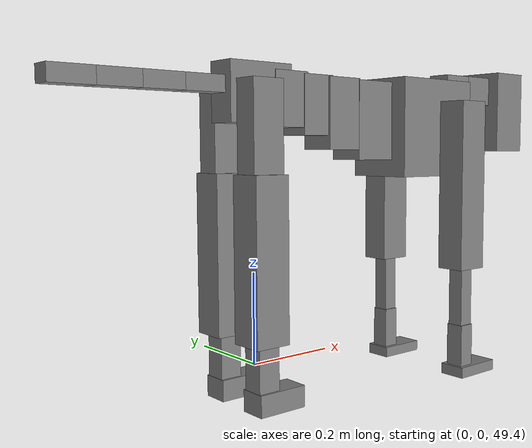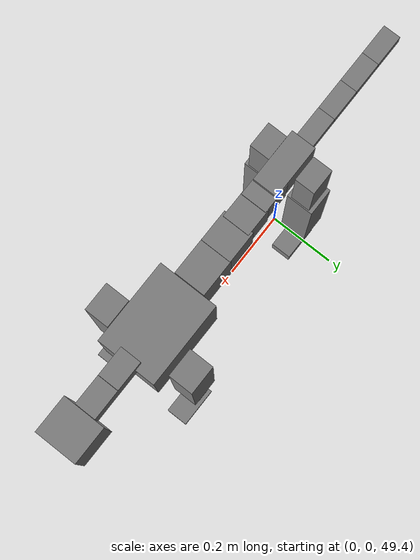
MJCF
<mujoco model="dog">

    <default>
        <joint armature="0.02" stiffness="1" damping="0.2" limited="true"/>
        <geom condim="3" friction="1 0.05 0.05" margin="0.01"/>
        <motor ctrllimited="true" ctrlrange="-1.0 1.0" forcelimited="true" gear="50"/>
    </default>

    <compiler inertiafromgeom="true" angle="radian"/>

    <option timestep="0.016" iterations="50" tolerance="1e-10" solver="Newton" jacobian="dense" cone="pyramidal"/>

    <size nconmax="20000" njmax="60000" nstack="5000000"/>
    <visual>
        <map force="0.1" zfar="30"/>
        <rgba haze="0.15 0.25 0.35 1"/>
        <quality shadowsize="2048"/>
        <global offwidth="800" offheight="800"/>
    </visual>

    <asset>
        <texture type="skybox" builtin="gradient" rgb1="0.3 0.5 0.7" rgb2="0 0 0" width="512" height="512"/>
        <texture name="texplane" type="2d" builtin="checker" rgb1=".2 .3 .4" rgb2=".1 0.15 0.2" width="512" height="512"
                 mark="cross" markrgb=".8 .8 .8"/>
        <texture name="texgeom" type="cube" builtin="flat" mark="cross" width="127" height="1278" rgb1="0.8 0.6 0.4"
                 rgb2="0.8 0.6 0.4" markrgb="1 1 1" random="0.01"/>

        <material name="matplane" reflectance="0.3" texture="texplane" texrepeat="1 1" texuniform="true"/>
        <material name="matgeom" texture="texgeom" texuniform="true" rgba="0.8 0.6 .4 1"/>
    </asset>

    <worldbody>
        <geom name="floor" pos="0 0 0" size="0 0 .25" type="plane" material="matplane" condim="3"/>

        <light directional="false" diffuse=".2 .2 .2" specular="0 0 0" pos="0 0 5" dir="0 0 -1" castshadow="false"/>
        <light mode="targetbodycom" target="torso" directional="false" diffuse=".8 .8 .8" specular="0.3 0.3 0.3"
               pos="0 0 4.0" dir="0 0 -1"/>

        <body name="root" pos="0 0 50">
            <freejoint name="root_1"/>
            <geom type="box" pos="0 0 -0.02" size="0.0774  0.0358  0.063" density="2030"/>

            <body name="spine1" pos="0.054 0 0">
                <joint name="spine1_y" axis="0 1 0" range="0 0.7" limited="true"/>
                <geom type="box" pos="0.02375 0 -0.03" size="0.04375  0.0375  0.05985" density="2030"/>

                <body name="spine2" pos="0.0612 0 0">
                    <joint name="spine2_y" axis="0 1 0" range="-0.15 0.15" limited="true"/>
                    <geom type="box" pos="0.03555  0  -0.04" size="0.04055  0.039  0.06615" density="2030"/>

                    <body name="spine3" pos="0.0730 0 0">
                        <joint name="spine3_y" axis="0 1 0" range="-0.15 0.15" limited="true"/>
                        <geom type="box" pos="0.03555  0  -0.057" size="0.04555  0.0445  0.081" density="2030"/>

                        <body name="spine4" pos="0.0780 0 0">
                            <joint name="spine4_y" axis="0 1 0" range="-0.15 0.15" limited="true"/>
                            <geom type="box" pos="0.05265  0  -0.07" size="0.05265  0.045  0.09135" density="2030"/>

                            <body name="torso" pos="0.1082 0 0">
                                <joint name="torso_y" axis="0 1 0" range="-0.15 0.15" limited="true"/>
                                <geom type="box" pos="0.11925  0  -0.085" size="0.11925  0.085  0.11745"
                                      density="2030"/>

                                <body name="neck1" pos="0.2160  0   0.0180">
                                    <joint name="neck1_y" axis="0 1 0" range="-1.2  -1" limited="true"/>
                                    <geom type="box" pos="0.0423  0  0" size="0.0423  0.03  0.036" density="2325"/>

                                    <body name="neck2" pos="0.0853  0  0">
                                        <joint name="neck2_y" axis="0 1 0" range="0.1  0" limited="true"/>
                                        <geom type="box" pos="0.0423  0  0" size="0.0423  0.03  0.036" density="2325"/>

                                        <body name="head" pos="0.0853  0  0">
                                            <joint name="head_y" axis="0 1 0" range="-0.3  -0.2" limited="true"/>
                                            <geom type="box" pos="0.0531  0  -0.055" size="0.0531  0.06  0.1044"
                                                  density="4030"/>

                                        </body>
                                    </body>
                                </body>

                                <body name="front_shoulder" pos="0.156  0   -0.0480">
                                    <joint name="front_shoulder_y" axis="0 1 0" range="-1 1.5" limited="true"/>
                                    <geom type="box" pos="0 0.13 -0.1767" size="0.0414  0.0353  0.2033" density="1158"/>
                                    <geom type="box" pos="0 -0.13 -0.1767" size="0.0414  0.0353  0.2033"
                                          density="1158"/>

                                    <body name="front_elbow" pos="0  0  -0.3533">
                                        <joint name="front_elbow_y" axis="0 1 0" range="-2 0" limited="true"/>
                                        <geom type="box" pos="0 0.13 -0.0900" size="0.0186  0.0190  0.0900"
                                              density="1081"/>
                                        <geom type="box" pos="0 -0.13 -0.0900" size="0.0186  0.0190  0.0900"
                                              density="1081"/>

                                        <body name="front_wrist" pos="0  0  -0.1800">
                                            <joint name="front_wrist_y" axis="0 1 0" range="-0.2 0" limited="true"/>
                                            <geom type="box" pos="0 0.13 -0.0516" size="0.0199  0.0221  0.0648"
                                                  density="1664"/>
                                            <geom type="box" pos="0 -0.13 -0.0516" size="0.0199  0.0221  0.0648"
                                                  density="1664"/>

                                            <body name="front_finger_end" pos="0  0  -0.1032">
                                                <joint name="front_finger_y" axis="0 1 0" range="-0.4 1"
                                                       limited="true"/>
                                                <geom type="box" pos="0.0329  0.13  0.0021"
                                                      size="0.0603  0.0329  0.0129" density="1515"/>
                                                <geom type="box" pos="0.0329  -0.13  0.0021"
                                                      size="0.0603  0.0329  0.0129" density="1515"/>

                                            </body>

                                        </body>
                                    </body>
                                </body>

                            </body>
                        </body>
                    </body>
                </body>
            </body>

            <body name="back_hip" pos="-0.03 0 -0.018">
                <joint name="back_hip_y" axis="0 1 0" range="-1.5 0.3" limited="true"/>
                <geom type="box" pos="0 0.07 -0.0928" size="0.0369  0.0290  0.1156" density="1154"/>
                <geom type="box" pos="0 -0.07 -0.0928" size="0.0369  0.0290  0.1156" density="1154"/>

                <body name="back_knee" pos="0  0  -0.1855">
                    <joint name="back_knee_y" axis="0 1 0" range="0 2.8" limited="true"/>
                    <geom type="box" pos="0 0.07 -0.1595" size="0.0403  0.0397  0.1751" density="1227"/>
                    <geom type="box" pos="0 -0.07 -0.1595" size="0.0403  0.0397  0.1751" density="1227"/>

                    <body name="back_ankle" pos="0  0  -0.3190">
                        <joint name="back_ankle_y" axis="0 1 0" range="-2.2 0" limited="true"/>
                        <geom type="box" pos="0 0.07 -0.0635" size="0.0249  0.0249  0.0747" density="1284"/>
                        <geom type="box" pos="0 -0.07 -0.0635" size="0.0249  0.0249  0.0747" density="1284"/>

                        <body name="back_toe_end" pos="0  0  -0.1269">
                            <joint name="back_toe_y" axis="0 1 0" range="-0.4 1" limited="true"/>
                            <geom type="box" pos="0.0308  0.07  -0.0085" size="0.0565  0.0308  0.0235" density="1515"/>
                            <geom type="box" pos="0.0308  -0.07  -0.0085" size="0.0565  0.0308  0.0235" density="1515"/>

                        </body>
                    </body>
                </body>
            </body>

            <body name="tail1" pos="-0.074 0 -0.006">
                <joint name="tail1_y" axis="0 1 0" range="-0.2 0.2" limited="true"/>
                <geom type="box" pos="-0.0536  0  0" size="0.045  0.025  0.0175" density="1587"/>

                <body name="tail2" pos="-0.09 0 0">
                    <joint name="tail2_y" axis="0 1 0" range="-0.2 0.2" limited="true"/>
                    <geom type="box" pos="-0.0536  0  0" size="0.045  0.025  0.0175" density="1587"/>

                    <body name="tail3" pos="-0.09 0 0">
                        <joint name="tail3_y" axis="0 1 0" range="-0.2 0.2" limited="true"/>
                        <geom type="box" pos="-0.0536  0  0" size="0.045  0.025  0.0175" density="1587"/>

                        <body name="tail4" pos="-0.09 0 0">
                            <joint name="tail4_y" axis="0 1 0" range="-0.2 0.2" limited="true"/>
                            <geom type="box" pos="-0.0536  0  0" size="0.045  0.025  0.0175" density="1587"/>

                        </body>
                    </body>
                </body>
            </body>
        </body>
    </worldbody>

    <actuator>
        <motor joint="spine1_y" forcerange="-150 150     "/>
        <motor joint="spine2_y" forcerange="-150 150     "/>
        <motor joint="spine3_y" forcerange="-150 150     "/>
        <motor joint="spine4_y" forcerange="-150 150     "/>
        <motor joint="torso_y" forcerange="-150 150     "/>
        <motor joint="neck1_y" forcerange="-100 100       "/>
        <motor joint="neck2_y" forcerange="-100 100       "/>
        <motor joint="head_y" forcerange="-150 150       "/>
        <motor joint="front_shoulder_y" forcerange="-170.96 164.66"/>
        <motor joint="front_elbow_y" forcerange="-117.42 121.02"/>
        <motor joint="front_wrist_y" forcerange="-107.40 69.35"/>
        <motor joint="front_finger_y" forcerange="-75.34 60.13"/>
        <motor joint="back_hip_y" forcerange="-240.02 346.13"/>
        <motor joint="back_knee_y" forcerange="-381.32 396.09"/>
        <motor joint="back_angle_y" forcerange="-143.59 155.14"/>
        <motor joint="back_toe_y" forcerange="-36.48 130.20"/>
        <motor joint="tail1_y" forcerange="-50 50     "/>
        <motor joint="tail2_y" forcerange="-50 50     "/>
        <motor joint="tail3_y" forcerange="-50 50     "/>
        <motor joint="tail4_y" forcerange="-50 50     "/>
    </actuator>
</mujoco>
